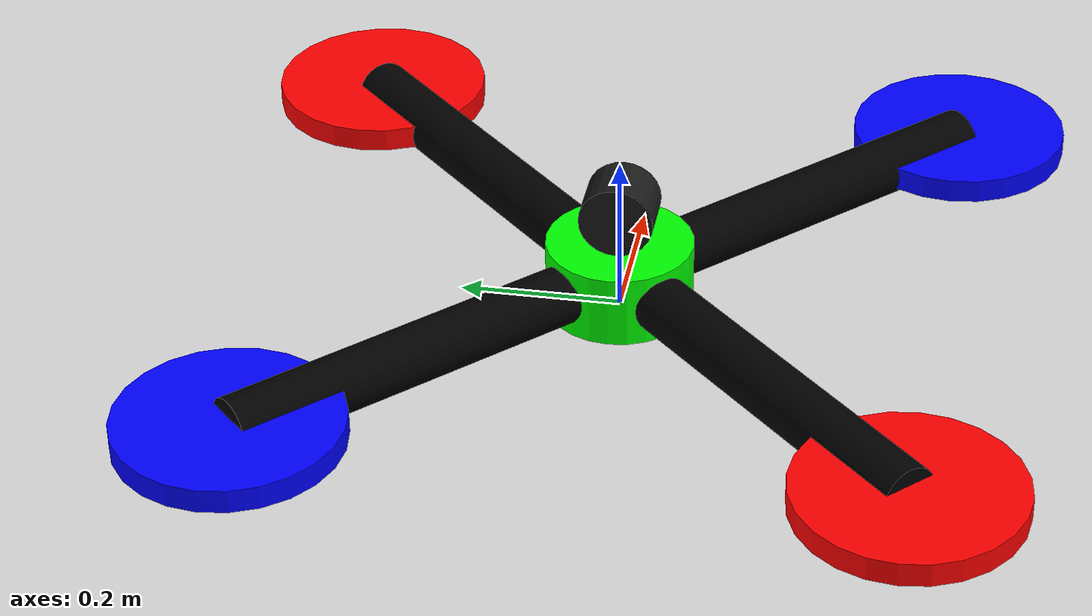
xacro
<?xml version="1.0"?>
<robot xmlns:xacro="http://www.ros.org/wiki/xacro" name="drone">

    <xacro:property name="namespace"  value="drone"/>

    <xacro:property name="arm_length"  value="0.55"/>
    <xacro:property name="arm_radius"  value="${arm_length/15.0}"/>
    <xacro:property name="prop_radius" value="${arm_length/4.0}"/>

    <xacro:property name="base_radius" value="${arm_length/6.0}"/>
    <xacro:property name="base_height" value="${base_radius}"/>

    <xacro:property name="base_mass" value="0.1"/>
    <xacro:property name="arm_mass" value="${base_mass/10.0}"/>
    <xacro:property name="prop_mass" value="${base_mass/10.0}"/>

    <xacro:property name='correction' value='1.0'/>

    <material name="blue">  <color rgba="0.1 0.3 0.9 1.0"/> </material>   <!-- royal blue -->
    <material name="green"> <color rgba="0.6 1.0 0.1 1.0"/> </material>   <!-- lime / acid green -->
    <material name="white"> <color rgba="1.0 1.0 1.0 1.0"/> </material>   <!-- pure white -->
    <material name="black"> <color rgba="0.1 0.1 0.1 1.0"/> </material>   <!-- charcoal -->

    <xacro:include filename='intertial_macros.urdf.xacro'/>    <!-- intertial-marcos -->
    <xacro:include filename='body_macros.urdf.xacro'/>         <!-- body-marcos -->
    <xacro:include filename='uav.urdf.xacro'/>              <!-- drone-chassis -->
    <xacro:include filename='camera.urdf.xacro'/>              <!-- adding camera -->

    <xacro:include filename='gazebo_plugin.urdf.xacro' />

</robot>

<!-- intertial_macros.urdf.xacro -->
<robot xmlns:xacro="http://www.ros.org/wiki/xacro" name="intertial_macros">

    <xacro:macro name="box_inertia" params="m w h d">
        <inertial>
        <origin xyz="0 0 0" rpy="${pi/2} 0 ${pi/2}"/>
        <mass value="${m}"/>
        <inertia ixx="${(m/12) * (h*h + d*d)}" ixy="0.0" ixz="0.0" iyy="${(m/12) * (w*w + d*d)}" iyz="0.0" izz="${(m/12) * (w*w + h*h)}"/>
        </inertial>
    </xacro:macro>

    <xacro:macro name="cylinder_inertia" params="m r h">
        <inertial>
        <origin xyz="0 0 0" rpy="${pi/2} 0 0" />
        <mass value="${m}"/>
        <inertia ixx="${(m/12) * (3*r*r + h*h)}" ixy = "0" ixz = "0" iyy="${(m/12) * (3*r*r + h*h)}" iyz = "0" izz="${(m/2) * (r*r)}"/>
        </inertial>
    </xacro:macro>

    <xacro:macro name="sphere_inertia" params="m r">
        <inertial>
        <mass value="${m}"/>
        <inertia ixx="${(2/5) * m * (r*r)}" ixy="0.0" ixz="0.0" iyy="${(2/5) * m * (r*r)}" iyz="0.0" izz="${(2/5) * m * (r*r)}"/>
        </inertial>
    </xacro:macro>

</robot>

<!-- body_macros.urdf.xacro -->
<robot xmlns:xacro="http://www.ros.org/wiki/xacro" name="body_macros">

  <xacro:macro name="arm" params="prefix color arm_angle">

    <joint name="${prefix}_joint" type="fixed">
        <parent link="base_link"/>
        <child link="${prefix}_link"/>
        <origin xyz="0.0 0.0 0.0" rpy="0 0 ${arm_angle+pi/4}"/>
    </joint>

    <link name="${prefix}_link">
      <visual>
        <origin xyz="${arm_length/2} 0 0" rpy="${pi/2} 0 ${pi/2}"/>
        <geometry>
            <cylinder radius="${arm_radius}" length="${arm_length}"/>
        </geometry>
	    <material name="black"><color rgba="0 0 0 1"/></material>
      </visual>

      <collision>
        <origin xyz="${arm_length/2} 0 0" rpy="${pi/2} 0 ${pi/2}"/>
        <geometry>
          <cylinder radius="${arm_radius}" length="${arm_length}"/>
        </geometry>
      </collision>

      <xacro:cylinder_inertia m="${correction * arm_mass}" r="${correction * arm_radius}" h="${correction * arm_length}"/>

    </link>

    <joint name="${prefix}_motor_joint" type="fixed">
        <parent link="${prefix}_link"/>
        <child link="${prefix}_motor_link"/>
        <origin xyz="${arm_length} 0.0 0.0" rpy="0 0 0"/>
    </joint>

    <link name="${prefix}_motor_link">
      <visual>
        <origin xyz="0 0 0" rpy="0 0 0"/>
        <geometry>
            <cylinder radius="${prop_radius}" length="0.03"/>
        </geometry>
	    <material name="${prefix}_color"><color rgba="${color}"/></material>
      </visual>
      <collision>
        <origin xyz="0 0 0" rpy="0 0 0"/>
        <geometry>
          <cylinder radius="${prop_radius}" length="0.03"/>
        </geometry>
      </collision>
      <xacro:cylinder_inertia m="${prop_mass}" r="${correction * prop_radius}" h="${correction * 0.03}"/>
    </link>

  </xacro:macro>
</robot>

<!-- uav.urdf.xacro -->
<robot name="drone" xmlns:xacro="http://ros.org/wiki/xacro">

  <link name="base_foot"></link>
  <link name="base_link">
      <visual>
        <geometry>
          <cylinder radius="${base_radius}" length="${base_height}"/>
        </geometry>
        <material name="base">
          <color rgba="0 1.0 0.0 1"/>
        </material>
      </visual>

      <collision>
        <origin xyz="0 0 0" rpy="0 0 0"/>
        <geometry>
          <cylinder radius="${base_radius}" length="${base_height}"/>
        </geometry>
      </collision>
      <xacro:cylinder_inertia m="${base_mass}" r="${base_radius}" h="${base_height}"/>
    </link>

    <joint name="base_foot_joint" type="fixed">
        <parent link="base_foot"/>
        <child link="base_link"/>
        <origin xyz="0.0 0.0 ${base_height/2.0}" rpy="0 0.0 0.0"/>
    </joint>

  <xacro:arm prefix="arm1" color="1.0 0.0 0.0 1.0" arm_angle="0" />
  <xacro:arm prefix="arm3" color="0.0 0.0 1.0 1.0" arm_angle="${pi/2}" />
  <xacro:arm prefix="arm4" color="1.0 0.0 0.0 1.0" arm_angle="${pi}" />
  <xacro:arm prefix="arm2" color="0.0 0.0 1.0 1.0" arm_angle="${3*pi/2}" />

</robot>

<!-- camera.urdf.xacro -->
<robot xmlns:xacro="http://www.ros.org/wiki/xacro" name="camera">

    <xacro:property name="camera_radius" value="${base_radius/2.0}"/>
    <xacro:property name="camera_height" value="${base_radius * 0.75}"/>
    <xacro:property name='camera_mass' value='${base_mass/10.0}'/>

    <link name="camera_link">
        <visual>
            <origin xyz="0.0 0.0 0.0" rpy="0.0 ${-pi/2} 0.0"/>
            <geometry> <cylinder radius="${camera_radius}" length="${camera_height}"/> </geometry>
            <material name="black"/>
            <xacro:cylinder_inertia m='${camera_mass}' r='${correction * camera_radius}' h='${correction * camera_height}' />
            <collision>
                <origin xyz="0.0 0.0 0.0" rpy="0.0 0.0 0.0"/>
                <geometry> <cylinder radius="${camera_radius}" length="${camera_height}"/> </geometry>
            </collision>
        </visual>
    </link>

    <joint name="base_camera" type="fixed">
        <parent link="base_link"/>
        <child link="camera_link"/>
        <origin xyz="0.0 0.0 ${camera_height + base_height/4.0}" rpy="0 0.0 0.0"/>
    </joint>

    <!-- This is a fix for opencv -->
    <link name="camera_link_optical"></link>
    <joint name="camera_optical_joint" type="fixed">
        <origin xyz="0 0 0" rpy="0.0 0.0 0.0"/>
        <parent link="camera_link"/>
        <child link="camera_link_optical"/>
    </joint>

    <gazebo reference='camera_link'>
        <sensor name="camera_sensor" type="camera" update_rate="10.0">
            <parent link="camera_link"/>
            <origin xyz="0.0 0.0 0.0" rpy="0.0 0.0 0.0"/>
            <visualize>true</visualize>

            <camera>
            <horizontal_fov>1.047</horizontal_fov>
            <image>
                <width>320</width>
                <height>240</height>
                <format>R8G8B8</format>
            </image>
            <clip>
                <near>0.1</near>
                <far>100</far>
            </clip>
            </camera>

            <plugin name="camera_driver" filename="libgazebo_ros_camera.so">
                <frame_name>camera_link_optical</frame_name>
            </plugin>
        </sensor>
    </gazebo>

</robot>
